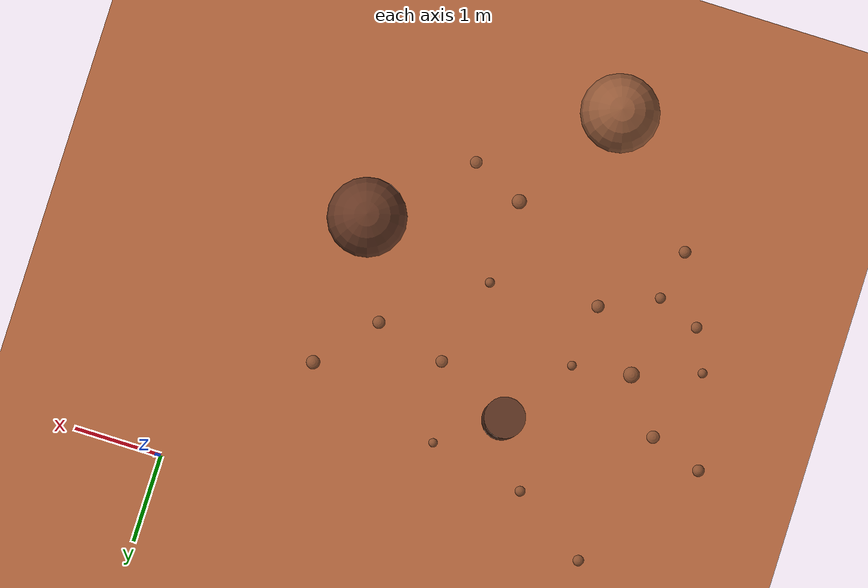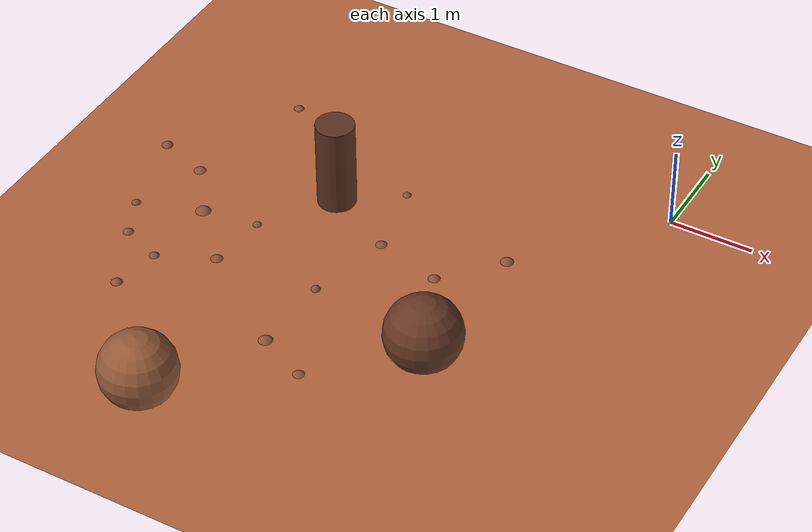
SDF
<sdf version="1.8">
 <world name="rover_world">
  <model name="ground_plane">
   <static>true</static>
   <link name="link">
    <collision name="collision">
     <geometry><plane><normal>0 0 1</normal><size>60 60</size></plane></geometry>
    </collision>
    <visual name="visual">
     <geometry><plane><normal>0 0 1</normal><size>60 60</size></plane></geometry>
     <material><ambient>0.71 0.40 0.24 1</ambient><diffuse>0.71 0.40 0.24 1</diffuse></material>
    </visual>
   </link>
  </model>
  <model name="rock_c0">
   <static>true</static>
   <pose>-3.521 -1.525 0.551 0 0 0</pose>
   <link name="link">
    <collision name="collision">
     <geometry><cylinder><radius>0.229</radius><length>1.102</length></cylinder></geometry>
    </collision>
    <visual name="visual">
     <geometry><cylinder><radius>0.229</radius><length>1.102</length></cylinder></geometry>
     <material><ambient>0.36 0.20 0.13 1</ambient><diffuse>0.36 0.20 0.13 1</diffuse></material>
    </visual>
   </link>
  </model>
  <model name="rock_s6">
   <static>true</static>
   <pose>-1.408 -3.227 0.248 0 0 0</pose>
   <link name="link">
    <collision name="collision"><geometry><sphere><radius>0.451</radius></sphere></geometry></collision>
    <visual name="visual">
     <geometry><sphere><radius>0.451</radius></sphere></geometry>
     <material><ambient>0.40 0.22 0.14 1</ambient><diffuse>0.40 0.22 0.14 1</diffuse></material>
    </visual>
   </link>
  </model>
  <model name="rock_s14">
   <static>true</static>
   <pose>-3.757 -5.185 0.247 0 0 0</pose>
   <link name="link">
    <collision name="collision"><geometry><sphere><radius>0.449</radius></sphere></geometry></collision>
    <visual name="visual">
     <geometry><sphere><radius>0.449</radius></sphere></geometry>
     <material><ambient>0.58 0.35 0.22 1</ambient><diffuse>0.58 0.35 0.22 1</diffuse></material>
    </visual>
   </link>
  </model>
  <model name="bump_19">
   <static>true</static>
   <pose>-4.811 -3.362 -0.045 0 0 0</pose>
   <link name="link">
    <collision name="collision"><geometry><sphere><radius>0.071</radius></sphere></geometry></collision>
    <visual name="visual">
     <geometry><sphere><radius>0.071</radius></sphere></geometry>
     <material><ambient>0.55 0.32 0.19 1</ambient><diffuse>0.55 0.32 0.19 1</diffuse></material>
    </visual>
   </link>
  </model>
  <model name="bump_30">
   <static>true</static>
   <pose>-2.979 -3.924 -0.077 0 0 0</pose>
   <link name="link">
    <collision name="collision"><geometry><sphere><radius>0.109</radius></sphere></geometry></collision>
    <visual name="visual">
     <geometry><sphere><radius>0.109</radius></sphere></geometry>
     <material><ambient>0.55 0.32 0.19 1</ambient><diffuse>0.55 0.32 0.19 1</diffuse></material>
    </visual>
   </link>
  </model>
  <model name="bump_35">
   <static>true</static>
   <pose>-1.312 -1.510 -0.066 0 0 0</pose>
   <link name="link">
    <collision name="collision"><geometry><sphere><radius>0.098</radius></sphere></geometry></collision>
    <visual name="visual">
     <geometry><sphere><radius>0.098</radius></sphere></geometry>
     <material><ambient>0.55 0.32 0.19 1</ambient><diffuse>0.55 0.32 0.19 1</diffuse></material>
    </visual>
   </link>
  </model>
  <model name="bump_55">
   <static>true</static>
   <pose>-4.805 -0.283 -0.053 0 0 0</pose>
   <link name="link">
    <collision name="collision"><geometry><sphere><radius>0.077</radius></sphere></geometry></collision>
    <visual name="visual">
     <geometry><sphere><radius>0.077</radius></sphere></geometry>
     <material><ambient>0.55 0.32 0.19 1</ambient><diffuse>0.55 0.32 0.19 1</diffuse></material>
    </visual>
   </link>
  </model>
  <model name="bump_85">
   <static>true</static>
   <pose>-2.685 -1.950 -0.079 0 0 0</pose>
   <link name="link">
    <collision name="collision"><geometry><sphere><radius>0.100</radius></sphere></geometry></collision>
    <visual name="visual">
     <geometry><sphere><radius>0.100</radius></sphere></geometry>
     <material><ambient>0.55 0.32 0.19 1</ambient><diffuse>0.55 0.32 0.19 1</diffuse></material>
    </visual>
   </link>
  </model>
  <model name="bump_88">
   <static>true</static>
   <pose>-2.864 -1.052 -0.033 0 0 0</pose>
   <link name="link">
    <collision name="collision"><geometry><sphere><radius>0.057</radius></sphere></geometry></collision>
    <visual name="visual">
     <geometry><sphere><radius>0.057</radius></sphere></geometry>
     <material><ambient>0.55 0.32 0.19 1</ambient><diffuse>0.55 0.32 0.19 1</diffuse></material>
    </visual>
   </link>
  </model>
  <model name="bump_91">
   <static>true</static>
   <pose>-2.386 -4.202 -0.093 0 0 0</pose>
   <link name="link">
    <collision name="collision"><geometry><sphere><radius>0.110</radius></sphere></geometry></collision>
    <visual name="visual">
     <geometry><sphere><radius>0.110</radius></sphere></geometry>
     <material><ambient>0.55 0.32 0.19 1</ambient><diffuse>0.55 0.32 0.19 1</diffuse></material>
    </visual>
   </link>
  </model>
  <model name="bump_117">
   <static>true</static>
   <pose>-4.922 -3.938 -0.052 0 0 0</pose>
   <link name="link">
    <collision name="collision"><geometry><sphere><radius>0.082</radius></sphere></geometry></collision>
    <visual name="visual">
     <geometry><sphere><radius>0.082</radius></sphere></geometry>
     <material><ambient>0.55 0.32 0.19 1</ambient><diffuse>0.55 0.32 0.19 1</diffuse></material>
    </visual>
   </link>
  </model>
  <model name="bump_120">
   <static>true</static>
   <pose>-2.935 -2.955 -0.021 0 0 0</pose>
   <link name="link">
    <collision name="collision"><geometry><sphere><radius>0.057</radius></sphere></geometry></collision>
    <visual name="visual">
     <geometry><sphere><radius>0.057</radius></sphere></geometry>
     <material><ambient>0.55 0.32 0.19 1</ambient><diffuse>0.55 0.32 0.19 1</diffuse></material>
    </visual>
   </link>
  </model>
  <model name="bump_152">
   <static>true</static>
   <pose>-4.170 -3.063 -0.064 0 0 0</pose>
   <link name="link">
    <collision name="collision"><geometry><sphere><radius>0.092</radius></sphere></geometry></collision>
    <visual name="visual">
     <geometry><sphere><radius>0.092</radius></sphere></geometry>
     <material><ambient>0.55 0.32 0.19 1</ambient><diffuse>0.55 0.32 0.19 1</diffuse></material>
    </visual>
   </link>
  </model>
  <model name="bump_177">
   <static>true</static>
   <pose>-4.757 -2.442 -0.072 0 0 0</pose>
   <link name="link">
    <collision name="collision"><geometry><sphere><radius>0.112</radius></sphere></geometry></collision>
    <visual name="visual">
     <geometry><sphere><radius>0.112</radius></sphere></geometry>
     <material><ambient>0.55 0.32 0.19 1</ambient><diffuse>0.55 0.32 0.19 1</diffuse></material>
    </visual>
   </link>
  </model>
  <model name="bump_194">
   <static>true</static>
   <pose>-3.954 -0.827 -0.043 0 0 0</pose>
   <link name="link">
    <collision name="collision"><geometry><sphere><radius>0.069</radius></sphere></geometry></collision>
    <visual name="visual">
     <geometry><sphere><radius>0.069</radius></sphere></geometry>
     <material><ambient>0.55 0.32 0.19 1</ambient><diffuse>0.55 0.32 0.19 1</diffuse></material>
    </visual>
   </link>
  </model>
  <model name="bump_225">
   <static>true</static>
   <pose>-5.789 -1.642 -0.040 0 0 0</pose>
   <link name="link">
    <collision name="collision"><geometry><sphere><radius>0.076</radius></sphere></geometry></collision>
    <visual name="visual">
     <geometry><sphere><radius>0.076</radius></sphere></geometry>
     <material><ambient>0.55 0.32 0.19 1</ambient><diffuse>0.55 0.32 0.19 1</diffuse></material>
    </visual>
   </link>
  </model>
  <model name="bump_232">
   <static>true</static>
   <pose>-5.194 -1.849 -0.088 0 0 0</pose>
   <link name="link">
    <collision name="collision"><geometry><sphere><radius>0.110</radius></sphere></geometry></collision>
    <visual name="visual">
     <geometry><sphere><radius>0.110</radius></sphere></geometry>
     <material><ambient>0.55 0.32 0.19 1</ambient><diffuse>0.55 0.32 0.19 1</diffuse></material>
    </visual>
   </link>
  </model>
  <model name="bump_239">
   <static>true</static>
   <pose>-4.090 -2.343 -0.034 0 0 0</pose>
   <link name="link">
    <collision name="collision"><geometry><sphere><radius>0.059</radius></sphere></geometry></collision>
    <visual name="visual">
     <geometry><sphere><radius>0.059</radius></sphere></geometry>
     <material><ambient>0.55 0.32 0.19 1</ambient><diffuse>0.55 0.32 0.19 1</diffuse></material>
    </visual>
   </link>
  </model>
  <model name="bump_244">
   <static>true</static>
   <pose>-5.296 -3.167 -0.049 0 0 0</pose>
   <link name="link">
    <collision name="collision"><geometry><sphere><radius>0.076</radius></sphere></geometry></collision>
    <visual name="visual">
     <geometry><sphere><radius>0.076</radius></sphere></geometry>
     <material><ambient>0.55 0.32 0.19 1</ambient><diffuse>0.55 0.32 0.19 1</diffuse></material>
    </visual>
   </link>
  </model>
  <model name="bump_250">
   <static>true</static>
   <pose>-5.511 -2.697 -0.033 0 0 0</pose>
   <link name="link">
    <collision name="collision"><geometry><sphere><radius>0.060</radius></sphere></geometry></collision>
    <visual name="visual">
     <geometry><sphere><radius>0.060</radius></sphere></geometry>
     <material><ambient>0.55 0.32 0.19 1</ambient><diffuse>0.55 0.32 0.19 1</diffuse></material>
    </visual>
   </link>
  </model>
  <model name="bump_252">
   <static>true</static>
   <pose>-1.882 -2.158 -0.065 0 0 0</pose>
   <link name="link">
    <collision name="collision"><geometry><sphere><radius>0.092</radius></sphere></geometry></collision>
    <visual name="visual">
     <geometry><sphere><radius>0.092</radius></sphere></geometry>
     <material><ambient>0.55 0.32 0.19 1</ambient><diffuse>0.55 0.32 0.19 1</diffuse></material>
    </visual>
   </link>
  </model>
 </world>
</sdf>
